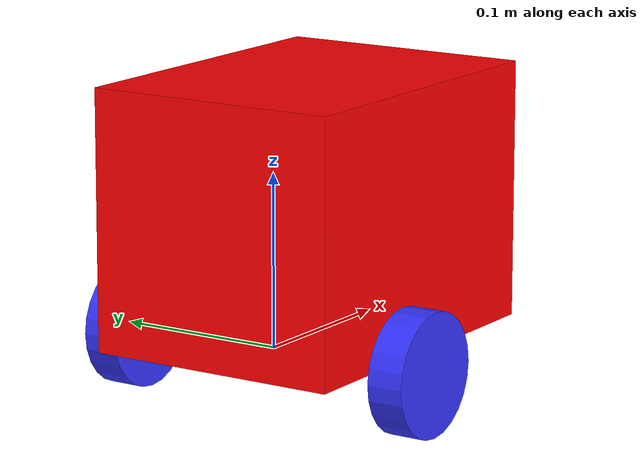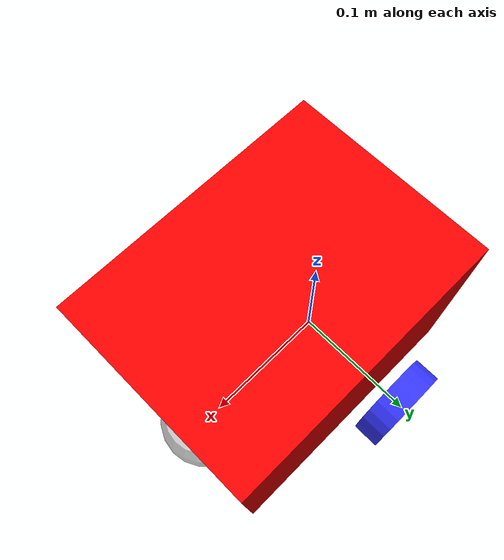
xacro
<?xml version="1.0"?>
<robot xmlns:xacro="http://www.ros.org/wiki/xacro"  name="robot">

    <xacro:include filename="robot_core.xacro"/>
    <xacro:include filename="lidar.xacro"/>
    <xacro:include filename="ros2_control.xacro"/>

</robot>

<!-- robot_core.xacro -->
<robot xmlns:xacro="http://www.ros.org/wiki/xacro">

    <xacro:include filename="inertial_macros.xacro"/>

      <material name ="white">
        <color rgba = "1 1 1 1"/>
    </material>

    <material name ="orange">
        <color rgba = "1 0.3 0.1 1"/>
    </material>

    <material name ="blue">
        <color rgba = "0.2 0.2 1 1"/>
    </material>

    <material name ="black">
        <color rgba = "0 0 0 1"/>
    </material>

    <material name ="red">
        <color rgba = "1 0 0 1"/>
    </material>

    <!--BASE LINK-->

    <link name="base_link">

    </link>

    <!--BASE FOOTPRINT LINK-->

    <joint name="base_footprint_joint" type="fixed">
        <parent link="base_link"/>
        <child link="base_footprint"/>
        <origin xyz = "0 0 0" rpy="0 0 0"/>
    </joint>

    <link name="base_footprint">
    </link>

    <!--CHASSIS LINK-->

    <joint name = "chassis_joint" type="fixed">
        <parent link="base_link"/>
        <child link="chassis"/>
        <origin xyz="-0.063 0 0"/>

    </joint>

    <link name="chassis">
        <visual>
            <origin xyz="0.1 0 0.075"/>
            <geometry>
                <box size ="0.2 0.15 0.15"/>
            </geometry>
            <material name="red"/>
        </visual>

        <collision>
            <origin xyz="0.1 0 0.075" rpy = "0 0 0"/>
            <geometry>
                <box size ="0.2 0.15 0.15"/>
            </geometry>
        </collision>
        <xacro:inertial_box mass="0.12" x = "0.2" y = "0.15" z = "0.15">
            <origin xyz="0.1 0 0.075" rpy ="0 0 0"/>
        </xacro:inertial_box>
    </link>

    <gazebo reference="chassis">
        <material>Gazebo/Red</material>
    </gazebo>

    <!--LEFT WHEEL JOINT-->

    <joint name = "left_wheel_joint" type="continuous">
        <parent link = "base_link"/>
        <child link = "left_wheel"/>
        <origin xyz="0 0.095 0" rpy="-${pi/2} 0 0"/>
        <axis xyz="0 0 1"/>
    </joint>

    <link name = "left_wheel">
        <visual>
            <geometry>
                <cylinder radius="0.0355" length="0.021"/>
            </geometry>
            <material name ="blue"/>
        </visual>
        <collision>
            <geometry>
                <sphere radius="0.0355"/>
            </geometry>
        </collision>
        <xacro:inertial_cylinder mass = "0.075" length="0.021" radius="0.0355">
            <origin xyz="0 0 0" rpy="0 0 0"/>
        </xacro:inertial_cylinder>
    </link>

    <gazebo reference="left_wheel">
        <material>Gazebo/Blue</material>
    </gazebo>

    <!--RIGHT WHEEL JOINT-->

    <joint name = "right_wheel_joint" type="continuous">
        <parent link = "base_link"/>
        <child link = "right_wheel"/>
        <origin xyz="0 -0.095 0" rpy="${pi/2} 0 0"/>
        <axis xyz="0 0 -1"/>
    </joint>

    <link name = "right_wheel">
        <visual>
            <geometry>
                <cylinder radius="0.0355" length="0.021"/>
            </geometry>
            <material name ="blue"/>
        </visual>
        <collision>
            <geometry>
                <sphere radius="0.0355"/>
            </geometry>
        </collision>
        <xacro:inertial_cylinder mass = "0.075" length="0.021" radius="0.0355">
            <origin xyz="0 0 0" rpy="0 0 0"/>
        </xacro:inertial_cylinder>
    </link>

    <gazebo reference="right_wheel">
        <material>Gazebo/Blue</material>
    </gazebo>

    <!--CASTER WHEEL JOINT-->

    <joint name="caster_wheel_joint" type="fixed">
        <parent link="chassis"/>
        <child link="caster_wheel"/>
        <origin xyz = "0.175 0 0"/>
    </joint>

    <link name="caster_wheel">
        <visual>
            <geometry>
                <sphere radius="0.037"/>
            </geometry>
            <material name ="white"/>
        </visual>
        <collision>
            <geometry>
                <sphere radius="0.037"/>
            </geometry>
        </collision>
        <!--original radius 0.02475-->
        <xacro:inertial_sphere mass = "0.1" radius="0.037">
            <origin xyz="0 0 0" rpy="0 0 0"/>
        </xacro:inertial_sphere>
    </link>

    <gazebo reference="caster_wheel">
        <material>Gazebo/White</material>
        <mu1 value="0.001"/>
        <mu2 value="0.001"/>
    </gazebo>

</robot>

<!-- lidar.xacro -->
<robot xmlns:xacro="http://www.ros.org/wiki/xacro">

    <joint name="laser_joint" type="fixed">
        <parent link="chassis"/>
        <child link="laser_frame"/>
        <!-- originally laser_frame -->
        <origin xyz="0.1 0 0.105" rpy="0 0 0"/>

    </joint>

    <link name = "laser_frame">
        <visual>
            <geometry>
                <cylinder radius = "0.05" length = "0.04"/>
            </geometry>
            <material name = "red"/>
        </visual>

        <collision>
            <geometry>
                <cylinder radius = "0.05" length = "0.04"/>
            </geometry>
        </collision>

         <xacro:inertial_cylinder mass ="0.1" length="0.04" radius="0.05">
            <origin xyz="0 0 0" rpy="0 0 0"/>
        </xacro:inertial_cylinder>
    </link>

    <gazebo reference="laser_frame">
        <material>Gazebo/Red</material>

        <sensor name="laser" type="ray">
            <pose> 0 0 0 0 0 0 </pose>
            <visualize>true</visualize>
            <update_rate>10</update_rate>
            <ray>
                <scan>
                    <horizontal>
                        <samples>360</samples>
                        <min_angle>-3.14</min_angle>
                        <max_angle>3.14</max_angle>
                    </horizontal>
                </scan>
                <range>
                    <min>0.3</min>
                    <max>12</max>
                </range>
            </ray>
            <plugin name="laser_controller" filename="libgazebo_ros_ray_sensor.so">
                <ros>
                    <argument>~/out:=scan</argument>
                </ros>
                <output_type>sensor_msgs/LaserScan</output_type>
                <frame_name>laser_frame</frame_name>
            </plugin>
        </sensor>
    </gazebo>

</robot>
